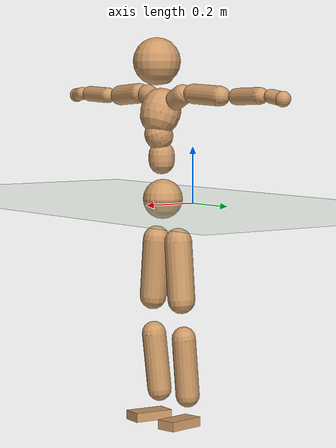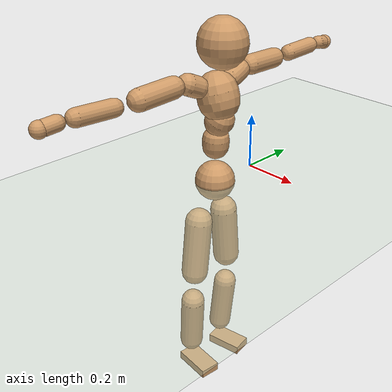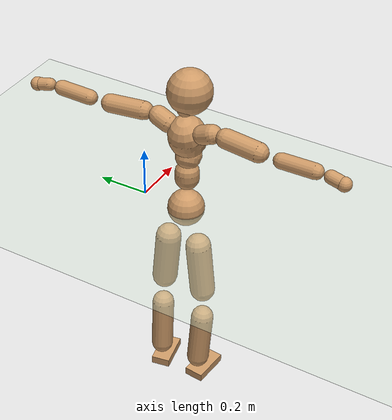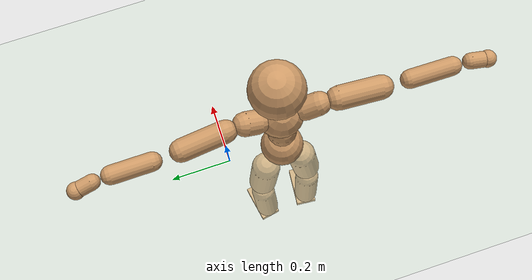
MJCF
<mujoco model="humanoid">
  <compiler coordinate="local"/>
  <default>
    <joint damping="0.0" armature="0.01" stiffness="0.0" limited="true"/>
    <geom conaffinity="1" condim="3" contype="7" margin="0.001" rgba="0.8 0.6 .4 1"/>
  </default>
  <asset>
    <texture type="skybox" builtin="gradient" rgb1=".4 .5 .6" rgb2="0 0 0" width="100" height="100"/>
    <texture builtin="flat" height="1278" mark="cross" markrgb="1 1 1" name="texgeom" random="0.01" rgb1="0.8 0.6 0.4" rgb2="0.8 0.6 0.4" type="cube" width="127"/>
    <texture builtin="checker" height="100" name="texplane" rgb1="0 0 0" rgb2="0.8 0.8 0.8" type="2d" width="100"/>
    <material name="MatPlane" reflectance="0.5" shininess="1" specular="1" texrepeat="60 60" texture="texplane"/>
    <material name="geom" texture="texgeom" texuniform="true"/>
  </asset>
  <worldbody>
    <light cutoff="100" diffuse="1 1 1" dir="-0 0 -1.3" directional="true" exponent="1" pos="0 0 1.3" specular=".1 .1 .1"/>
    <geom conaffinity="1" condim="3" name="floor" pos="0 0 0" rgba="0.8 0.9 0.8 1" size="100 100 .2" type="plane" material="MatPlane"/>
    <body name="Pelvis" pos="-0.0007 -0.1842 0.0047">
      <freejoint name="Pelvis"/>
      <geom type="sphere" contype="1" conaffinity="1" density="500" size="0.0723" pos="0.0000 0.0000 0.0000" name="Pelvis"/>
      <body name="L_Hip" pos="-0.0202 0.0602 -0.0822">
        <joint name="L_Hip_x" type="hinge" pos="0 0 0" axis="1 0 0" stiffness="800" damping="80" armature="0.02" range="-180.0000 180.0000"/>
        <joint name="L_Hip_y" type="hinge" pos="0 0 0" axis="0 1 0" stiffness="800" damping="80" armature="0.02" range="-180.0000 180.0000"/>
        <joint name="L_Hip_z" type="hinge" pos="0 0 0" axis="0 0 1" stiffness="800" damping="80" armature="0.02" range="-180.0000 180.0000"/>
        <geom type="capsule" contype="1" conaffinity="1" density="500" fromto="-0.0003 0.0063 -0.0706 -0.0011 0.0252 -0.2822" size="0.0501" name="L_Hip"/>
        <body name="L_Knee" pos="-0.0014 0.0315 -0.3528">
          <joint name="L_Knee_x" type="hinge" pos="0 0 0" axis="1 0 0" stiffness="800" damping="80" armature="0.02" range="-180.0000 180.0000"/>
          <joint name="L_Knee_y" type="hinge" pos="0 0 0" axis="0 1 0" stiffness="800" damping="80" armature="0.02" range="-180.0000 180.0000"/>
          <joint name="L_Knee_z" type="hinge" pos="0 0 0" axis="0 0 1" stiffness="800" damping="80" armature="0.02" range="-180.0000 180.0000"/>
          <geom type="capsule" contype="1" conaffinity="1" density="500" fromto="-0.0072 -0.0017 -0.0707 -0.0286 -0.0069 -0.2827" size="0.0439" name="L_Knee"/>
          <body name="L_Ankle" pos="-0.0358 -0.0086 -0.3534">
            <joint name="L_Ankle_x" type="hinge" pos="0 0 0" axis="1 0 0" stiffness="800" damping="80" armature="0.02" range="-180.0000 180.0000"/>
            <joint name="L_Ankle_y" type="hinge" pos="0 0 0" axis="0 1 0" stiffness="800" damping="80" armature="0.02" range="-180.0000 180.0000"/>
            <joint name="L_Ankle_z" type="hinge" pos="0 0 0" axis="0 0 1" stiffness="800" damping="80" armature="0.02" range="-180.0000 180.0000"/>
            <geom type="box" contype="1" conaffinity="1" density="500" pos="0.0509 0.0092 -0.0252" size="0.0715 0.0379 0.0173" quat="0.9960 0.0000 0.0000 0.0889" name="L_Ankle"/>
            <body name="L_Toe" pos="0.1018 0.0183 -0.0505">
              <joint name="L_Toe_x" type="hinge" pos="0 0 0" axis="1 0 0" stiffness="500" damping="50" armature="0.02" range="-180.0000 180.0000"/>
              <joint name="L_Toe_y" type="hinge" pos="0 0 0" axis="0 1 0" stiffness="500" damping="50" armature="0.02" range="-180.0000 180.0000"/>
              <joint name="L_Toe_z" type="hinge" pos="0 0 0" axis="0 0 1" stiffness="500" damping="50" armature="0.02" range="-180.0000 180.0000"/>
              <geom type="box" contype="1" conaffinity="1" density="500" pos="0.0000 0.0000 0.0259" size="0.0008 0.0019 0.0009" quat="0.9953 0.0000 0.0000 0.0965" name="L_Toe"/>
            </body>
          </body>
        </body>
      </body>
      <body name="R_Hip" pos="-0.0163 -0.057 -0.0818">
        <joint name="R_Hip_x" type="hinge" pos="0 0 0" axis="1 0 0" stiffness="800" damping="80" armature="0.02" range="-180.0000 180.0000"/>
        <joint name="R_Hip_y" type="hinge" pos="0 0 0" axis="0 1 0" stiffness="800" damping="80" armature="0.02" range="-180.0000 180.0000"/>
        <joint name="R_Hip_z" type="hinge" pos="0 0 0" axis="0 0 1" stiffness="800" damping="80" armature="0.02" range="-180.0000 180.0000"/>
        <geom type="capsule" contype="1" conaffinity="1" density="500" fromto="-0.0005 -0.0076 -0.0711 -0.0018 -0.0302 -0.2846" size="0.0497" name="R_Hip"/>
        <body name="R_Knee" pos="-0.0023 -0.0378 -0.3557">
          <joint name="R_Knee_x" type="hinge" pos="0 0 0" axis="1 0 0" stiffness="800" damping="80" armature="0.02" range="-180.0000 180.0000"/>
          <joint name="R_Knee_y" type="hinge" pos="0 0 0" axis="0 1 0" stiffness="800" damping="80" armature="0.02" range="-180.0000 180.0000"/>
          <joint name="R_Knee_z" type="hinge" pos="0 0 0" axis="0 0 1" stiffness="800" damping="80" armature="0.02" range="-180.0000 180.0000"/>
          <geom type="capsule" contype="1" conaffinity="1" density="500" fromto="-0.0065 0.0025 -0.0704 -0.0262 0.0099 -0.2816" size="0.0449" name="R_Knee"/>
          <body name="R_Ankle" pos="-0.0327 0.0124 -0.352">
            <joint name="R_Ankle_x" type="hinge" pos="0 0 0" axis="1 0 0" stiffness="800" damping="80" armature="0.02" range="-180.0000 180.0000"/>
            <joint name="R_Ankle_y" type="hinge" pos="0 0 0" axis="0 1 0" stiffness="800" damping="80" armature="0.02" range="-180.0000 180.0000"/>
            <joint name="R_Ankle_z" type="hinge" pos="0 0 0" axis="0 0 1" stiffness="800" damping="80" armature="0.02" range="-180.0000 180.0000"/>
            <geom type="box" contype="1" conaffinity="1" density="500" pos="0.0524 -0.0047 -0.0212" size="0.0747 0.0393 0.0167" quat="0.9990 0.0000 0.0000 -0.0449" name="R_Ankle"/>
            <body name="R_Toe" pos="0.1048 -0.0094 -0.0425">
              <joint name="R_Toe_x" type="hinge" pos="0 0 0" axis="1 0 0" stiffness="500" damping="50" armature="0.02" range="-180.0000 180.0000"/>
              <joint name="R_Toe_y" type="hinge" pos="0 0 0" axis="0 1 0" stiffness="500" damping="50" armature="0.02" range="-180.0000 180.0000"/>
              <joint name="R_Toe_z" type="hinge" pos="0 0 0" axis="0 0 1" stiffness="500" damping="50" armature="0.02" range="-180.0000 180.0000"/>
              <geom type="box" contype="1" conaffinity="1" density="500" pos="0.0000 0.0000 0.0258" size="0.0007 0.0019 0.0011" quat="0.9994 0.0000 0.0000 -0.0348" name="R_Toe"/>
            </body>
          </body>
        </body>
      </body>
      <body name="Torso" pos="0.0016 -0.0025 0.0878">
        <joint name="Torso_x" type="hinge" pos="0 0 0" axis="1 0 0" stiffness="1000" damping="100" armature="0.02" range="-180.0000 180.0000"/>
        <joint name="Torso_y" type="hinge" pos="0 0 0" axis="0 1 0" stiffness="1000" damping="100" armature="0.02" range="-180.0000 180.0000"/>
        <joint name="Torso_z" type="hinge" pos="0 0 0" axis="0 0 1" stiffness="1000" damping="100" armature="0.02" range="-180.0000 180.0000"/>
        <geom type="capsule" contype="1" conaffinity="1" density="500" fromto="0.0032 0.0012 0.0741 0.0021 0.0008 0.0494" size="0.0473" name="Torso"/>
        <body name="Spine" pos="0.0054 0.002 0.1236">
          <joint name="Spine_x" type="hinge" pos="0 0 0" axis="1 0 0" stiffness="1000" damping="100" armature="0.02" range="-180.0000 180.0000"/>
          <joint name="Spine_y" type="hinge" pos="0 0 0" axis="0 1 0" stiffness="1000" damping="100" armature="0.02" range="-180.0000 180.0000"/>
          <joint name="Spine_z" type="hinge" pos="0 0 0" axis="0 0 1" stiffness="1000" damping="100" armature="0.02" range="-180.0000 180.0000"/>
          <geom type="capsule" contype="1" conaffinity="1" density="500" fromto="0.0142 0.0016 0.0256 0.0094 0.0011 0.0171" size="0.051" name="Spine"/>
          <body name="Chest" pos="0.0236 0.0027 0.0427">
            <joint name="Chest_x" type="hinge" pos="0 0 0" axis="1 0 0" stiffness="1000" damping="100" armature="0.02" range="-180.0000 180.0000"/>
            <joint name="Chest_y" type="hinge" pos="0 0 0" axis="0 1 0" stiffness="1000" damping="100" armature="0.02" range="-180.0000 180.0000"/>
            <joint name="Chest_z" type="hinge" pos="0 0 0" axis="0 0 1" stiffness="1000" damping="100" armature="0.02" range="-180.0000 180.0000"/>
            <geom type="capsule" contype="1" conaffinity="1" density="500" fromto="-0.0242 -0.0006 0.0762 -0.0161 -0.0004 0.0508" size="0.0725" name="Chest"/>
            <body name="Neck" pos="-0.0481 -0.0024 0.1817">
              <joint name="Neck_x" type="hinge" pos="0 0 0" axis="1 0 0" stiffness="500" damping="50" armature="0.02" range="-180.0000 180.0000"/>
              <joint name="Neck_y" type="hinge" pos="0 0 0" axis="0 1 0" stiffness="500" damping="50" armature="0.02" range="-180.0000 180.0000"/>
              <joint name="Neck_z" type="hinge" pos="0 0 0" axis="0 0 1" stiffness="500" damping="50" armature="0.02" range="-180.0000 180.0000"/>
              <geom type="capsule" contype="1" conaffinity="1" density="500" fromto="0.0092 0.0006 0.0124 0.0368 0.0025 0.0495" size="0.0323" name="Neck"/>
              <body name="Head" pos="0.046 0.0031 0.0619">
                <joint name="Head_x" type="hinge" pos="0 0 0" axis="1 0 0" stiffness="500" damping="50" armature="0.02" range="-180.0000 180.0000"/>
                <joint name="Head_y" type="hinge" pos="0 0 0" axis="0 1 0" stiffness="500" damping="50" armature="0.02" range="-180.0000 180.0000"/>
                <joint name="Head_z" type="hinge" pos="0 0 0" axis="0 0 1" stiffness="500" damping="50" armature="0.02" range="-180.0000 180.0000"/>
                <geom type="sphere" contype="1" conaffinity="1" density="500" size="0.0859" pos="0.0000 0.0000 0.0000" name="Head"/>
              </body>
            </body>
            <body name="L_Thorax" pos="-0.0344 0.059 0.1002">
              <joint name="L_Thorax_x" type="hinge" pos="0 0 0" axis="1 0 0" stiffness="500" damping="50" armature="0.02" range="-180.0000 180.0000"/>
              <joint name="L_Thorax_y" type="hinge" pos="0 0 0" axis="0 1 0" stiffness="500" damping="50" armature="0.02" range="-180.0000 180.0000"/>
              <joint name="L_Thorax_z" type="hinge" pos="0 0 0" axis="0 0 1" stiffness="500" damping="50" armature="0.02" range="-180.0000 180.0000"/>
              <geom type="capsule" contype="1" conaffinity="1" density="500" fromto="-0.0001 0.0133 0.0061 -0.0003 0.0533 0.0244" size="0.0374" name="L_Thorax"/>
              <body name="L_Shoulder" pos="-0.0003 0.0667 0.0306">
                <joint name="L_Shoulder_x" type="hinge" pos="0 0 0" axis="1 0 0" stiffness="500" damping="50" armature="0.02" range="-720.0000 720.0000"/>
                <joint name="L_Shoulder_y" type="hinge" pos="0 0 0" axis="0 1 0" stiffness="500" damping="50" armature="0.02" range="-720.0000 720.0000"/>
                <joint name="L_Shoulder_z" type="hinge" pos="0 0 0" axis="0 0 1" stiffness="500" damping="50" armature="0.02" range="-720.0000 720.0000"/>
                <geom type="capsule" contype="1" conaffinity="1" density="500" fromto="-0.0040 0.0464 -0.0022 -0.0158 0.1855 -0.0089" size="0.0356" name="L_Shoulder"/>
                <body name="L_Elbow" pos="-0.0198 0.2319 -0.0111">
                  <joint name="L_Elbow_x" type="hinge" pos="0 0 0" axis="1 0 0" stiffness="500" damping="50" armature="0.02" range="-720.0000 720.0000"/>
                  <joint name="L_Elbow_y" type="hinge" pos="0 0 0" axis="0 1 0" stiffness="500" damping="50" armature="0.02" range="-720.0000 720.0000"/>
                  <joint name="L_Elbow_z" type="hinge" pos="0 0 0" axis="0 0 1" stiffness="500" damping="50" armature="0.02" range="-720.0000 720.0000"/>
                  <geom type="capsule" contype="1" conaffinity="1" density="500" fromto="-0.0005 0.0419 0.0013 -0.0021 0.1674 0.0052" size="0.0292" name="L_Elbow"/>
                  <body name="L_Wrist" pos="-0.0026 0.2093 0.0065">
                    <joint name="L_Wrist_x" type="hinge" pos="0 0 0" axis="1 0 0" stiffness="300" damping="30" armature="0.02" range="-180.0000 180.0000"/>
                    <joint name="L_Wrist_y" type="hinge" pos="0 0 0" axis="0 1 0" stiffness="300" damping="30" armature="0.02" range="-180.0000 180.0000"/>
                    <joint name="L_Wrist_z" type="hinge" pos="0 0 0" axis="0 0 1" stiffness="300" damping="30" armature="0.02" range="-180.0000 180.0000"/>
                    <geom type="capsule" contype="1" conaffinity="1" density="500" fromto="-0.0020 0.0132 -0.0022 -0.0079 0.0528 -0.0088" size="0.0244" name="L_Wrist"/>
                    <body name="L_Hand" pos="-0.0098 0.066 -0.011">
                      <joint name="L_Hand_x" type="hinge" pos="0 0 0" axis="1 0 0" stiffness="300" damping="30" armature="0.02" range="-180.0000 180.0000"/>
                      <joint name="L_Hand_y" type="hinge" pos="0 0 0" axis="0 1 0" stiffness="300" damping="30" armature="0.02" range="-180.0000 180.0000"/>
                      <joint name="L_Hand_z" type="hinge" pos="0 0 0" axis="0 0 1" stiffness="300" damping="30" armature="0.02" range="-180.0000 180.0000"/>
                      <geom type="sphere" contype="1" conaffinity="1" density="500" size="0.0270" pos="0.0000 0.0000 0.0000" name="L_Hand"/>
                    </body>
                  </body>
                </body>
              </body>
            </body>
            <body name="R_Thorax" pos="-0.0383 -0.0598 0.099">
              <joint name="R_Thorax_x" type="hinge" pos="0 0 0" axis="1 0 0" stiffness="500" damping="50" armature="0.02" range="-180.0000 180.0000"/>
              <joint name="R_Thorax_y" type="hinge" pos="0 0 0" axis="0 1 0" stiffness="500" damping="50" armature="0.02" range="-180.0000 180.0000"/>
              <joint name="R_Thorax_z" type="hinge" pos="0 0 0" axis="0 0 1" stiffness="500" damping="50" armature="0.02" range="-180.0000 180.0000"/>
              <geom type="capsule" contype="1" conaffinity="1" density="500" fromto="-0.0012 -0.0138 0.0062 -0.0049 -0.0551 0.0250" size="0.0368" name="R_Thorax"/>
              <body name="R_Shoulder" pos="-0.0061 -0.0688 0.0312">
                <joint name="R_Shoulder_x" type="hinge" pos="0 0 0" axis="1 0 0" stiffness="500" damping="50" armature="0.02" range="-720.0000 720.0000"/>
                <joint name="R_Shoulder_y" type="hinge" pos="0 0 0" axis="0 1 0" stiffness="500" damping="50" armature="0.02" range="-720.0000 720.0000"/>
                <joint name="R_Shoulder_z" type="hinge" pos="0 0 0" axis="0 0 1" stiffness="500" damping="50" armature="0.02" range="-720.0000 720.0000"/>
                <geom type="capsule" contype="1" conaffinity="1" density="500" fromto="-0.0020 -0.0446 -0.0029 -0.0080 -0.1783 -0.0116" size="0.0374" name="R_Shoulder"/>
                <body name="R_Elbow" pos="-0.01 -0.2229 -0.0145">
                  <joint name="R_Elbow_x" type="hinge" pos="0 0 0" axis="1 0 0" stiffness="500" damping="50" armature="0.02" range="-720.0000 720.0000"/>
                  <joint name="R_Elbow_y" type="hinge" pos="0 0 0" axis="0 1 0" stiffness="500" damping="50" armature="0.02" range="-720.0000 720.0000"/>
                  <joint name="R_Elbow_z" type="hinge" pos="0 0 0" axis="0 0 1" stiffness="500" damping="50" armature="0.02" range="-720.0000 720.0000"/>
                  <geom type="capsule" contype="1" conaffinity="1" density="500" fromto="-0.0010 -0.0442 0.0017 -0.0040 -0.1768 0.0066" size="0.0293" name="R_Elbow"/>
                  <body name="R_Wrist" pos="-0.005 -0.2209 0.0083">
                    <joint name="R_Wrist_x" type="hinge" pos="0 0 0" axis="1 0 0" stiffness="300" damping="30" armature="0.02" range="-180.0000 180.0000"/>
                    <joint name="R_Wrist_y" type="hinge" pos="0 0 0" axis="0 1 0" stiffness="300" damping="30" armature="0.02" range="-180.0000 180.0000"/>
                    <joint name="R_Wrist_z" type="hinge" pos="0 0 0" axis="0 0 1" stiffness="300" damping="30" armature="0.02" range="-180.0000 180.0000"/>
                    <geom type="capsule" contype="1" conaffinity="1" density="500" fromto="-0.0019 -0.0134 -0.0016 -0.0074 -0.0535 -0.0064" size="0.025" name="R_Wrist"/>
                    <body name="R_Hand" pos="-0.0093 -0.0669 -0.008">
                      <joint name="R_Hand_x" type="hinge" pos="0 0 0" axis="1 0 0" stiffness="300" damping="30" armature="0.02" range="-180.0000 180.0000"/>
                      <joint name="R_Hand_y" type="hinge" pos="0 0 0" axis="0 1 0" stiffness="300" damping="30" armature="0.02" range="-180.0000 180.0000"/>
                      <joint name="R_Hand_z" type="hinge" pos="0 0 0" axis="0 0 1" stiffness="300" damping="30" armature="0.02" range="-180.0000 180.0000"/>
                      <geom type="sphere" contype="1" conaffinity="1" density="500" size="0.0270" pos="0.0000 0.0000 0.0000" name="R_Hand"/>
                    </body>
                  </body>
                </body>
              </body>
            </body>
          </body>
        </body>
      </body>
    </body>
  </worldbody>
  <actuator>
    <motor name="L_Hip_x" joint="L_Hip_x" gear="500"/>
    <motor name="L_Hip_y" joint="L_Hip_y" gear="500"/>
    <motor name="L_Hip_z" joint="L_Hip_z" gear="500"/>
    <motor name="L_Knee_x" joint="L_Knee_x" gear="500"/>
    <motor name="L_Knee_y" joint="L_Knee_y" gear="500"/>
    <motor name="L_Knee_z" joint="L_Knee_z" gear="500"/>
    <motor name="L_Ankle_x" joint="L_Ankle_x" gear="500"/>
    <motor name="L_Ankle_y" joint="L_Ankle_y" gear="500"/>
    <motor name="L_Ankle_z" joint="L_Ankle_z" gear="500"/>
    <motor name="L_Toe_x" joint="L_Toe_x" gear="500"/>
    <motor name="L_Toe_y" joint="L_Toe_y" gear="500"/>
    <motor name="L_Toe_z" joint="L_Toe_z" gear="500"/>
    <motor name="R_Hip_x" joint="R_Hip_x" gear="500"/>
    <motor name="R_Hip_y" joint="R_Hip_y" gear="500"/>
    <motor name="R_Hip_z" joint="R_Hip_z" gear="500"/>
    <motor name="R_Knee_x" joint="R_Knee_x" gear="500"/>
    <motor name="R_Knee_y" joint="R_Knee_y" gear="500"/>
    <motor name="R_Knee_z" joint="R_Knee_z" gear="500"/>
    <motor name="R_Ankle_x" joint="R_Ankle_x" gear="500"/>
    <motor name="R_Ankle_y" joint="R_Ankle_y" gear="500"/>
    <motor name="R_Ankle_z" joint="R_Ankle_z" gear="500"/>
    <motor name="R_Toe_x" joint="R_Toe_x" gear="500"/>
    <motor name="R_Toe_y" joint="R_Toe_y" gear="500"/>
    <motor name="R_Toe_z" joint="R_Toe_z" gear="500"/>
    <motor name="Torso_x" joint="Torso_x" gear="500"/>
    <motor name="Torso_y" joint="Torso_y" gear="500"/>
    <motor name="Torso_z" joint="Torso_z" gear="500"/>
    <motor name="Spine_x" joint="Spine_x" gear="500"/>
    <motor name="Spine_y" joint="Spine_y" gear="500"/>
    <motor name="Spine_z" joint="Spine_z" gear="500"/>
    <motor name="Chest_x" joint="Chest_x" gear="500"/>
    <motor name="Chest_y" joint="Chest_y" gear="500"/>
    <motor name="Chest_z" joint="Chest_z" gear="500"/>
    <motor name="Neck_x" joint="Neck_x" gear="500"/>
    <motor name="Neck_y" joint="Neck_y" gear="500"/>
    <motor name="Neck_z" joint="Neck_z" gear="500"/>
    <motor name="Head_x" joint="Head_x" gear="500"/>
    <motor name="Head_y" joint="Head_y" gear="500"/>
    <motor name="Head_z" joint="Head_z" gear="500"/>
    <motor name="L_Thorax_x" joint="L_Thorax_x" gear="500"/>
    <motor name="L_Thorax_y" joint="L_Thorax_y" gear="500"/>
    <motor name="L_Thorax_z" joint="L_Thorax_z" gear="500"/>
    <motor name="L_Shoulder_x" joint="L_Shoulder_x" gear="500"/>
    <motor name="L_Shoulder_y" joint="L_Shoulder_y" gear="500"/>
    <motor name="L_Shoulder_z" joint="L_Shoulder_z" gear="500"/>
    <motor name="L_Elbow_x" joint="L_Elbow_x" gear="500"/>
    <motor name="L_Elbow_y" joint="L_Elbow_y" gear="500"/>
    <motor name="L_Elbow_z" joint="L_Elbow_z" gear="500"/>
    <motor name="L_Wrist_x" joint="L_Wrist_x" gear="500"/>
    <motor name="L_Wrist_y" joint="L_Wrist_y" gear="500"/>
    <motor name="L_Wrist_z" joint="L_Wrist_z" gear="500"/>
    <motor name="L_Hand_x" joint="L_Hand_x" gear="500"/>
    <motor name="L_Hand_y" joint="L_Hand_y" gear="500"/>
    <motor name="L_Hand_z" joint="L_Hand_z" gear="500"/>
    <motor name="R_Thorax_x" joint="R_Thorax_x" gear="500"/>
    <motor name="R_Thorax_y" joint="R_Thorax_y" gear="500"/>
    <motor name="R_Thorax_z" joint="R_Thorax_z" gear="500"/>
    <motor name="R_Shoulder_x" joint="R_Shoulder_x" gear="500"/>
    <motor name="R_Shoulder_y" joint="R_Shoulder_y" gear="500"/>
    <motor name="R_Shoulder_z" joint="R_Shoulder_z" gear="500"/>
    <motor name="R_Elbow_x" joint="R_Elbow_x" gear="500"/>
    <motor name="R_Elbow_y" joint="R_Elbow_y" gear="500"/>
    <motor name="R_Elbow_z" joint="R_Elbow_z" gear="500"/>
    <motor name="R_Wrist_x" joint="R_Wrist_x" gear="500"/>
    <motor name="R_Wrist_y" joint="R_Wrist_y" gear="500"/>
    <motor name="R_Wrist_z" joint="R_Wrist_z" gear="500"/>
    <motor name="R_Hand_x" joint="R_Hand_x" gear="500"/>
    <motor name="R_Hand_y" joint="R_Hand_y" gear="500"/>
    <motor name="R_Hand_z" joint="R_Hand_z" gear="500"/>
  </actuator>
  <contact>
    <exclude body1="Torso" body2="Chest"/>
    <exclude body1="Head" body2="Chest"/>
    <exclude body1="R_Knee" body2="R_Toe"/>
    <exclude body1="R_Knee" body2="L_Ankle"/>
    <exclude body1="R_Knee" body2="L_Toe"/>
    <exclude body1="L_Knee" body2="L_Toe"/>
    <exclude body1="L_Knee" body2="R_Ankle"/>
    <exclude body1="L_Knee" body2="R_Toe"/>
    <exclude body1="L_Shoulder" body2="Chest"/>
    <exclude body1="R_Shoulder" body2="Chest"/>
  </contact>
  <sensor/>
  <size njmax="700" nconmax="700"/>
</mujoco>
